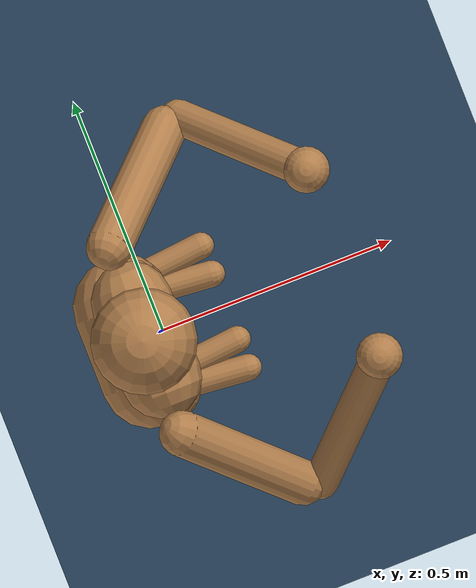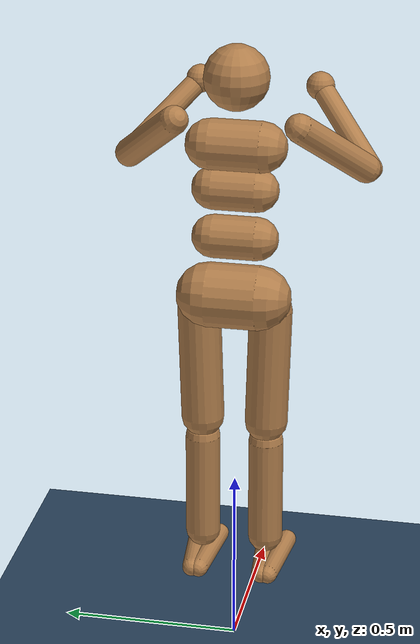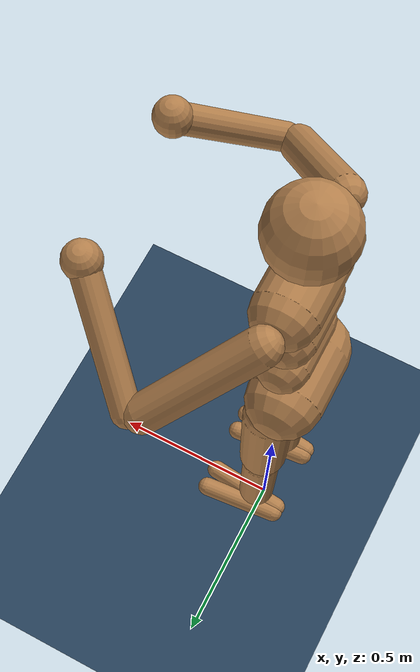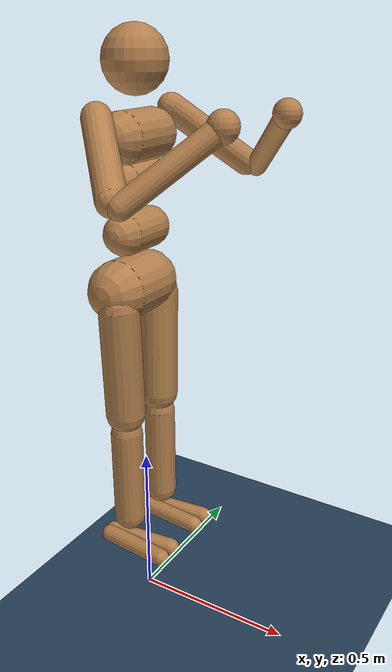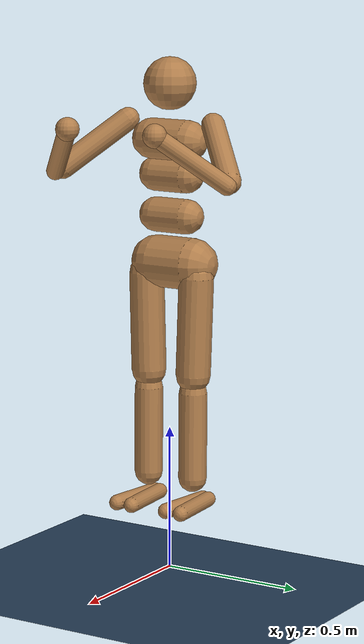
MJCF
<mujoco model="humanoid">
  <compiler angle="radian"/>

  <option timestep="0.005"/>

  <visual>
    <quality shadowsize="2048"/>
    <headlight ambient="0.4 0.4 0.4" diffuse="0.8 0.8 0.8" specular="0.1 0.1 0.1"/>
  </visual>

  <statistic extent="2" center="0 0 1"/>

  <default>
    <general ctrllimited="true" ctrlrange="-1 1"/>
    <default class="body">
      <joint solimplimit="0 0.99 0.01" stiffness="1" limited="true" armature="0.01" damping="0.2"/>
      <geom type="capsule" condim="1" friction="0.7" solref="0.015" solimp="0.9 0.99 0.003" material="self"/>
      <site size="0.04 0.005 0.005" group="3"/>
      <default class="big_joint">
        <joint stiffness="10" damping="5"/>
        <default class="big_stiff_joint">
          <joint stiffness="20"/>
        </default>
      </default>
      <default class="force-torque">
        <site size="0.01 0.01 0.02" type="box" rgba="1 0 0 1"/>
      </default>
      <default class="touch">
        <site type="capsule" rgba="0 0 1 0.3"/>
      </default>
    </default>
  </default>

  <asset>
    <texture type="skybox" name="skybox" builtin="gradient" mark="random" rgb1="0.4 0.6 0.8" rgb2="0 0 0" markrgb="1 1 1" width="800" height="4800"/>
    <texture type="2d" name="grid" builtin="checker" mark="edge" rgb1="0.1 0.2 0.3" rgb2="0.2 0.3 0.4" markrgb="0.2 0.3 0.4" width="300" height="300"/>
    <material name="grid" texture="grid" texuniform="true" reflectance="0.2"/>
    <material name="self" rgba="0.7 0.5 0.3 1"/>
    <material name="self_default" rgba="0.7 0.5 0.3 1"/>
    <material name="self_highlight" rgba="0 0.5 0.3 1"/>
    <material name="effector" rgba="0.7 0.4 0.2 1"/>
    <material name="effector_default" rgba="0.7 0.4 0.2 1"/>
    <material name="effector_highlight" rgba="0 0.5 0.3 1"/>
    <material name="decoration" rgba="0.3 0.5 0.7 1"/>
    <material name="eye" rgba="0 0.2 1 1"/>
    <material name="target" rgba="0.6 0.3 0.3 1"/>
    <material name="target_default" rgba="0.6 0.3 0.3 1"/>
    <material name="target_highlight" rgba="0.6 0.3 0.3 0.4"/>
    <material name="site" rgba="0.5 0.5 0.5 0.3"/>
  </asset>

  <worldbody>
    <geom name="floor" size="100 100 0.2" type="plane" material="grid"/>
    <body name="torso" childclass="body" pos="0 0 1.5">
      <joint name="root" type="free" solimplimit="0.9 0.95 0.001" stiffness="0" limited="false" actuatorfrclimited="false" armature="0" damping="0"/>
      <geom name="torso" size="0.07 0.07" quat="0.707107 0.707107 0 0"/>
      <geom name="upper_waist" size="0.06 0.06" pos="-0.01 0 -0.12" quat="0.707107 0.707107 0 0"/>
      <site name="root" class="force-torque" pos="0 0 0"/>
      <site name="torso" class="touch" pos="0 0 -0.05" size="0.075 0.14 0.13" type="box"/>
      <camera name="back" pos="-3 0 1" quat="0.601501 0.371748 -0.371748 -0.601501" mode="trackcom"/>
      <camera name="side" pos="0 -3 1" quat="0.850651 0.525731 0 0" mode="trackcom"/>
      <light name="top" pos="0 0 2" dir="0 0 -1" mode="trackcom"/>
      <body name="head" pos="0 0 0.19">
        <geom name="head" size="0.09" type="sphere"/>
        <site name="head" class="touch" pos="0 0 0" size="0.091" type="sphere"/>
        <camera name="egocentric" pos="0.09 0 0" quat="0.524286 0.474472 -0.474472 -0.524286" fovy="80"/>
      </body>
      <body name="lower_waist" pos="-0.01 0 -0.26" quat="0.999998 0 -0.002 0">
        <joint name="abdomen_z" class="big_stiff_joint" pos="0 0 0.065" axis="0 0 1" range="-0.785398 0.785398"/>
        <joint name="abdomen_y" class="big_joint" pos="0 0 0.065" axis="0 1 0" range="-1.309 0.523599"/>
        <geom name="lower_waist" size="0.06 0.06" quat="0.707107 0.707107 0 0"/>
        <site name="lower_waist" class="touch" pos="0 0 0" quat="0.707107 -0.707107 0 0" size="0.061 0.06"/>
        <body name="pelvis" pos="0 0 -0.165" quat="0.999998 0 -0.002 0">
          <joint name="abdomen_x" class="big_joint" pos="0 0 0.1" axis="1 0 0" range="-0.610865 0.610865"/>
          <geom name="butt" size="0.09 0.07" pos="-0.02 0 0" quat="0.707107 0.707107 0 0"/>
          <site name="butt" class="touch" pos="-0.02 0 0" quat="0.707107 -0.707107 0 0" size="0.091 0.07"/>
          <body name="right_thigh" pos="0 -0.1 -0.04">
            <joint name="right_hip_x" class="big_joint" pos="0 0 0" axis="1 0 0" range="-0.436332 0.0872665"/>
            <joint name="right_hip_z" class="big_joint" pos="0 0 0" axis="0 0 1" range="-1.0472 0.610865"/>
            <joint name="right_hip_y" class="big_stiff_joint" pos="0 0 0" axis="0 1 0" range="-1.91986 0.349066"/>
            <geom name="right_thigh" size="0.06 0.170074" pos="0 0.005 -0.17" quat="0.999892 0.0147011 0 0"/>
            <site name="right_hip" class="force-torque" pos="0 0 0"/>
            <site name="right_thigh" class="touch" pos="0 0.005 -0.17" quat="0.999892 0.0147011 0 0" size="0.061 0.17"/>
            <body name="right_shin" pos="0 0.01 -0.403">
              <joint name="right_knee" pos="0 0 0.02" axis="0 -1 0" range="-2.79253 0.0349066"/>
              <geom name="right_shin" size="0.049 0.15" pos="0 0 -0.15"/>
              <site name="right_knee" class="force-torque" pos="0 0 0.02"/>
              <site name="right_shin" class="touch" pos="0 0 -0.15" size="0.05 0.15"/>
              <body name="right_foot" pos="0 0 -0.39">
                <joint name="right_ankle_y" pos="0 0 0.08" axis="0 1 0" stiffness="6" range="-0.872665 0.872665"/>
                <joint name="right_ankle_x" pos="0 0 0.04" axis="0.894427 0 0.447214" stiffness="3" range="-0.872665 0.872665"/>
                <geom name="right_right_foot" size="0.027 0.105475" pos="0.035 -0.03 0" quat="0.707107 -0.0670402 -0.703922 0"/>
                <geom name="left_right_foot" size="0.027 0.105475" pos="0.035 0.01 0" quat="0.707107 0.0670402 -0.703922 0"/>
                <site name="right_ankle" class="force-torque" pos="0 0 0"/>
                <site name="right_right_foot" class="touch" pos="0.035 -0.03 0" quat="0.707107 0.0670402 0.703922 0" size="0.03 0.11"/>
                <site name="left_right_foot" class="touch" pos="0.035 0.01 0" quat="0.707107 -0.0670402 0.703922 0" size="0.03 0.11"/>
              </body>
            </body>
          </body>
          <body name="left_thigh" pos="0 0.1 -0.04">
            <joint name="left_hip_x" class="big_joint" pos="0 0 0" axis="-1 0 0" range="-0.436332 0.0872665"/>
            <joint name="left_hip_z" class="big_joint" pos="0 0 0" axis="0 0 -1" range="-1.0472 0.610865"/>
            <joint name="left_hip_y" class="big_stiff_joint" pos="0 0 0" axis="0 1 0" range="-2.0944 0.349066"/>
            <geom name="left_thigh" size="0.06 0.170074" pos="0 -0.005 -0.17" quat="0.999892 -0.0147011 0 0"/>
            <site name="left_hip" class="force-torque" pos="0 0 0"/>
            <site name="left_thigh" class="touch" pos="0 -0.005 -0.17" quat="0.999892 -0.0147011 0 0" size="0.061 0.17"/>
            <body name="left_shin" pos="0 -0.01 -0.403">
              <joint name="left_knee" pos="0 0 0.02" axis="0 -1 0" range="-2.79253 0.0349066"/>
              <geom name="left_shin" size="0.049 0.15" pos="0 0 -0.15"/>
              <site name="left_knee" class="force-torque" pos="0 0 0.02"/>
              <site name="left_shin" class="touch" pos="0 0 -0.15" size="0.05 0.15"/>
              <body name="left_foot" pos="0 0 -0.39">
                <joint name="left_ankle_y" pos="0 0 0.08" axis="0 1 0" stiffness="6" range="-0.872665 0.872665"/>
                <joint name="left_ankle_x" pos="0 0 0.04" axis="0.894427 0 0.447214" stiffness="3" range="-0.872665 0.872665"/>
                <geom name="left_left_foot" size="0.027 0.105475" pos="0.035 0.03 0" quat="0.707107 0.0670402 -0.703922 0"/>
                <geom name="right_left_foot" size="0.027 0.105475" pos="0.035 -0.01 0" quat="0.707107 -0.0670402 -0.703922 0"/>
                <site name="left_ankle" class="force-torque" pos="0 0 0"/>
                <site name="right_left_foot" class="touch" pos="0.035 -0.01 0" quat="0.707107 0.0670402 0.703922 0" size="0.03 0.11"/>
                <site name="left_left_foot" class="touch" pos="0.035 0.03 0" quat="0.707107 -0.0670402 0.703922 0" size="0.03 0.11"/>
              </body>
            </body>
          </body>
        </body>
      </body>
      <body name="right_upper_arm" pos="0 -0.17 0.06">
        <joint name="right_shoulder1" pos="0 0 0" axis="0.816497 0.408248 0.408248" range="-1.48353 1.0472"/>
        <joint name="right_shoulder2" pos="0 0 0" axis="0 -0.707107 0.707107" range="-1.48353 1.0472"/>
        <geom name="right_upper_arm" size="0.04 0.138564" pos="0.08 -0.08 -0.08" quat="0.888074 -0.325058 -0.325058 0"/>
        <site name="right_upper_arm" class="touch" pos="0.08 -0.08 -0.08" quat="0.459701 0.627963 0.627963 0" size="0.041 0.14"/>
        <body name="right_lower_arm" pos="0.18 -0.18 -0.18">
          <joint name="right_elbow" pos="0 0 0" axis="0 -0.707107 0.707107" stiffness="0" range="-1.5708 0.872665"/>
          <geom name="right_lower_arm" size="0.031 0.138564" pos="0.09 0.09 0.09" quat="0.459701 0.627963 -0.627963 0"/>
          <site name="right_lower_arm" class="touch" pos="0.09 0.09 0.09" quat="0.888074 -0.325058 0.325058 0" size="0.032 0.14"/>
          <body name="right_hand" pos="0.18 0.18 0.18">
            <geom name="right_hand" size="0.04" type="sphere"/>
            <site name="right_hand" class="touch" pos="0 0 0" size="0.041" type="sphere"/>
          </body>
        </body>
      </body>
      <body name="left_upper_arm" pos="0 0.17 0.06">
        <joint name="left_shoulder1" pos="0 0 0" axis="0.816497 -0.408248 0.408248" range="-1.0472 1.48353"/>
        <joint name="left_shoulder2" pos="0 0 0" axis="0 0.707107 0.707107" range="-1.0472 1.48353"/>
        <geom name="left_upper_arm" size="0.04 0.138564" pos="0.08 0.08 -0.08" quat="0.888074 0.325058 -0.325058 0"/>
        <site name="left_upper_arm" class="touch" pos="0.08 0.08 -0.08" quat="0.459701 -0.627963 0.627963 0" size="0.041 0.14"/>
        <body name="left_lower_arm" pos="0.18 0.18 -0.18">
          <joint name="left_elbow" pos="0 0 0" axis="0 -0.707107 -0.707107" stiffness="0" range="-1.5708 0.872665"/>
          <geom name="left_lower_arm" size="0.031 0.138564" pos="0.09 -0.09 0.09" quat="0.459701 -0.627963 -0.627963 0"/>
          <site name="left_lower_arm" class="touch" pos="0.09 -0.09 0.09" quat="0.888074 0.325058 0.325058 0" size="0.032 0.14"/>
          <body name="left_hand" pos="0.18 -0.18 0.18">
            <geom name="left_hand" size="0.04" type="sphere"/>
            <site name="left_hand" class="touch" pos="0 0 0" size="0.041" type="sphere"/>
          </body>
        </body>
      </body>
    </body>
  </worldbody>

  <actuator>
    <general name="abdomen_y" joint="abdomen_y" gear="40 0 0 0 0 0"/>
    <general name="abdomen_z" joint="abdomen_z" gear="40 0 0 0 0 0"/>
    <general name="abdomen_x" joint="abdomen_x" gear="40 0 0 0 0 0"/>
    <general name="right_hip_x" joint="right_hip_x" gear="40 0 0 0 0 0"/>
    <general name="right_hip_z" joint="right_hip_z" gear="40 0 0 0 0 0"/>
    <general name="right_hip_y" joint="right_hip_y" gear="120 0 0 0 0 0"/>
    <general name="right_knee" joint="right_knee" gear="80 0 0 0 0 0"/>
    <general name="right_ankle_x" joint="right_ankle_x" gear="20 0 0 0 0 0"/>
    <general name="right_ankle_y" joint="right_ankle_y" gear="20 0 0 0 0 0"/>
    <general name="left_hip_x" joint="left_hip_x" gear="40 0 0 0 0 0"/>
    <general name="left_hip_z" joint="left_hip_z" gear="40 0 0 0 0 0"/>
    <general name="left_hip_y" joint="left_hip_y" gear="120 0 0 0 0 0"/>
    <general name="left_knee" joint="left_knee" gear="80 0 0 0 0 0"/>
    <general name="left_ankle_x" joint="left_ankle_x" gear="20 0 0 0 0 0"/>
    <general name="left_ankle_y" joint="left_ankle_y" gear="20 0 0 0 0 0"/>
    <general name="right_shoulder1" joint="right_shoulder1" gear="20 0 0 0 0 0"/>
    <general name="right_shoulder2" joint="right_shoulder2" gear="20 0 0 0 0 0"/>
    <general name="right_elbow" joint="right_elbow" gear="40 0 0 0 0 0"/>
    <general name="left_shoulder1" joint="left_shoulder1" gear="20 0 0 0 0 0"/>
    <general name="left_shoulder2" joint="left_shoulder2" gear="20 0 0 0 0 0"/>
    <general name="left_elbow" joint="left_elbow" gear="40 0 0 0 0 0"/>
  </actuator>

  <sensor>
    <subtreelinvel body="torso" name="torso_subtreelinvel"/>
    <accelerometer site="root" name="torso_accel"/>
    <velocimeter site="root" name="torso_vel"/>
    <gyro site="root" name="torso_gyro"/>
    <force site="left_ankle" name="left_ankle_force"/>
    <force site="right_ankle" name="right_ankle_force"/>
    <force site="left_knee" name="left_knee_force"/>
    <force site="right_knee" name="right_knee_force"/>
    <force site="left_hip" name="left_hip_force"/>
    <force site="right_hip" name="right_hip_force"/>
    <torque site="left_ankle" name="left_ankle_torque"/>
    <torque site="right_ankle" name="right_ankle_torque"/>
    <torque site="left_knee" name="left_knee_torque"/>
    <torque site="right_knee" name="right_knee_torque"/>
    <torque site="left_hip" name="left_hip_torque"/>
    <torque site="right_hip" name="right_hip_torque"/>
    <touch site="torso" name="torso_touch"/>
    <touch site="head" name="head_touch"/>
    <touch site="lower_waist" name="lower_waist_touch"/>
    <touch site="butt" name="butt_touch"/>
    <touch site="right_thigh" name="right_thigh_touch"/>
    <touch site="right_shin" name="right_shin_touch"/>
    <touch site="right_right_foot" name="right_right_foot_touch"/>
    <touch site="left_right_foot" name="left_right_foot_touch"/>
    <touch site="left_thigh" name="left_thigh_touch"/>
    <touch site="left_shin" name="left_shin_touch"/>
    <touch site="right_left_foot" name="right_left_foot_touch"/>
    <touch site="left_left_foot" name="left_left_foot_touch"/>
    <touch site="right_upper_arm" name="right_upper_arm_touch"/>
    <touch site="right_lower_arm" name="right_lower_arm_touch"/>
    <touch site="right_hand" name="right_hand_touch"/>
    <touch site="left_upper_arm" name="left_upper_arm_touch"/>
    <touch site="left_lower_arm" name="left_lower_arm_touch"/>
    <touch site="left_hand" name="left_hand_touch"/>
  </sensor>
</mujoco>
